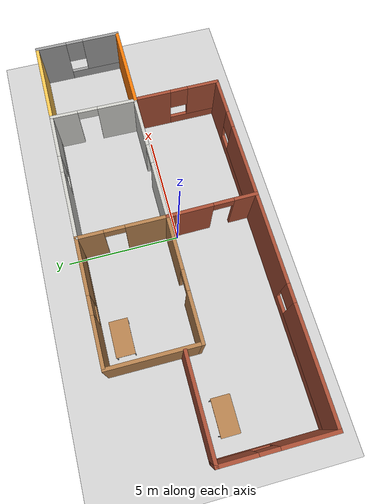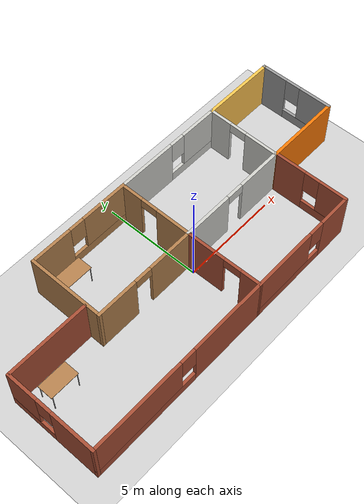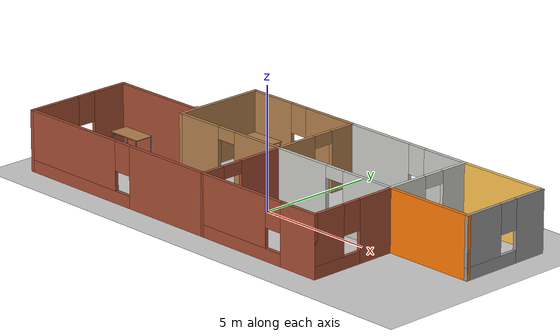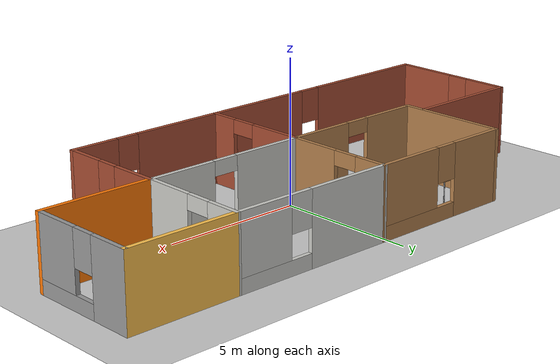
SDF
<sdf version="1.6">
 <world name="default">
  <model name="ground_plane">
   <static>1</static>
   <link name="link">
    <collision name="collision">
     <geometry><plane><normal>0 0 1</normal><size>100 100</size></plane></geometry>
     <surface>
      <contact><collide_bitmask>65535</collide_bitmask></contact>
      <friction><ode><mu>100</mu><mu2>50</mu2></ode></friction>
     </surface>
    </collision>
    <visual name="visual">
     <cast_shadows>0</cast_shadows>
     <geometry><plane><normal>0 0 1</normal><size>100 100</size></plane></geometry>
     <material>
      <script><uri>file://media/materials/scripts/gazebo.material</uri><name>Gazebo/Grey</name></script>
     </material>
    </visual>
   </link>
  </model>
  <model name="Untitled">
   <pose>0.26939 0.41592 0 0 -0 0</pose>
   <link name="Wall_0">
    <collision name="Wall_0_Collision">
     <geometry><box><size>4 0.15 2.5</size></box></geometry>
     <pose>0 0 1.25 0 -0 0</pose>
    </collision>
    <visual name="Wall_0_Visual">
     <pose>0 0 1.25 0 -0 0</pose>
     <geometry><box><size>4 0.15 2.5</size></box></geometry>
     <material>
      <script><uri>file://media/materials/scripts/gazebo.material</uri><name>Gazebo/Wood</name></script>
      <ambient>1 1 1 1</ambient>
     </material>
     <meta><layer>0</layer></meta>
    </visual>
    <pose>-5.4532 1.93857 0 0 -0 1.5708</pose>
   </link>
   <link name="Wall_1">
    <pose>-2.7782 3.86357 0 0 -0 0</pose>
    <visual name="Wall_1_Visual_0">
     <pose>-1.66344 0 1.25 0 -0 0</pose>
     <geometry><box><size>2.17311 0.15 2.5</size></box></geometry>
     <material>
      <script><uri>file://media/materials/scripts/gazebo.material</uri><name>Gazebo/Wood</name></script>
      <ambient>1 1 1 1</ambient>
     </material>
     <meta><layer>0</layer></meta>
    </visual>
    <collision name="Wall_1_Collision_0">
     <geometry><box><size>2.17311 0.15 2.5</size></box></geometry>
     <pose>-1.66344 0 1.25 0 -0 0</pose>
    </collision>
    <visual name="Wall_1_Visual_1">
     <pose>1.08656 0 0.25 0 -0 0</pose>
     <geometry><box><size>3.32689 0.15 0.5</size></box></geometry>
     <material>
      <script><uri>file://media/materials/scripts/gazebo.material</uri><name>Gazebo/Wood</name></script>
      <ambient>1 1 1 1</ambient>
     </material>
     <meta><layer>0</layer></meta>
    </visual>
    <collision name="Wall_1_Collision_1">
     <geometry><box><size>3.32689 0.15 0.5</size></box></geometry>
     <pose>1.08656 0 0.25 0 -0 0</pose>
    </collision>
    <visual name="Wall_1_Visual_2">
     <pose>1.48656 0 1.5 0 -0 0</pose>
     <geometry><box><size>2.52689 0.15 2</size></box></geometry>
     <material>
      <script><uri>file://media/materials/scripts/gazebo.material</uri><name>Gazebo/Wood</name></script>
      <ambient>1 1 1 1</ambient>
     </material>
     <meta><layer>0</layer></meta>
    </visual>
    <collision name="Wall_1_Collision_2">
     <geometry><box><size>2.52689 0.15 2</size></box></geometry>
     <pose>1.48656 0 1.5 0 -0 0</pose>
    </collision>
    <visual name="Wall_1_Visual_3">
     <pose>-0.176886 0 1.9 0 -0 0</pose>
     <geometry><box><size>0.8 0.15 1.2</size></box></geometry>
     <material>
      <script><uri>file://media/materials/scripts/gazebo.material</uri><name>Gazebo/Wood</name></script>
      <ambient>1 1 1 1</ambient>
     </material>
     <meta><layer>0</layer></meta>
    </visual>
    <collision name="Wall_1_Collision_3">
     <geometry><box><size>0.8 0.15 1.2</size></box></geometry>
     <pose>-0.176886 0 1.9 0 -0 0</pose>
    </collision>
   </link>
   <link name="Wall_13">
    <pose>2.8218 0.013569 0 0 -0 0</pose>
    <visual name="Wall_13_Visual_0">
     <pose>-1.67586 0 1.25 0 -0 0</pose>
     <geometry><box><size>2.64829 0.15 2.5</size></box></geometry>
     <material>
      <script><uri>file://media/materials/scripts/gazebo.material</uri><name>Gazebo/CeilingTiled</name></script>
      <ambient>0.996078 0.47451 0.0196078 1</ambient>
     </material>
     <meta><layer>0</layer></meta>
    </visual>
    <collision name="Wall_13_Collision_0">
     <geometry><box><size>2.64829 0.15 2.5</size></box></geometry>
     <pose>-1.67586 0 1.25 0 -0 0</pose>
    </collision>
    <visual name="Wall_13_Visual_1">
     <pose>1.77414 0 1.25 0 -0 0</pose>
     <geometry><box><size>2.45171 0.15 2.5</size></box></geometry>
     <material>
      <script><uri>file://media/materials/scripts/gazebo.material</uri><name>Gazebo/CeilingTiled</name></script>
      <ambient>0.996078 0.47451 0.0196078 1</ambient>
     </material>
     <meta><layer>0</layer></meta>
    </visual>
    <collision name="Wall_13_Collision_1">
     <geometry><box><size>2.45171 0.15 2.5</size></box></geometry>
     <pose>1.77414 0 1.25 0 -0 0</pose>
    </collision>
    <visual name="Wall_13_Visual_2">
     <pose>0.098288 0 2.25 0 -0 0</pose>
     <geometry><box><size>0.9 0.15 0.5</size></box></geometry>
     <material>
      <script><uri>file://media/materials/scripts/gazebo.material</uri><name>Gazebo/CeilingTiled</name></script>
      <ambient>0.996078 0.47451 0.0196078 1</ambient>
     </material>
     <meta><layer>0</layer></meta>
    </visual>
    <collision name="Wall_13_Collision_2">
     <geometry><box><size>0.9 0.15 0.5</size></box></geometry>
     <pose>0.098288 0 2.25 0 -0 0</pose>
    </collision>
   </link>
   <link name="Wall_14">
    <pose>5.7734 1.92534 0 0 -0 1.55688</pose>
    <visual name="Wall_14_Visual_0">
     <pose>-1.0801 0 1.25 0 -0 0</pose>
     <geometry><box><size>1.81371 0.15 2.5</size></box></geometry>
     <material>
      <script><uri>file://media/materials/scripts/gazebo.material</uri><name>Gazebo/CeilingTiled</name></script>
      <ambient>1 1 1 1</ambient>
     </material>
     <meta><layer>0</layer></meta>
    </visual>
    <collision name="Wall_14_Collision_0">
     <geometry><box><size>1.81371 0.15 2.5</size></box></geometry>
     <pose>-1.0801 0 1.25 0 -0 0</pose>
    </collision>
    <visual name="Wall_14_Visual_1">
     <pose>1.35686 0 1.25 0 -0 0</pose>
     <geometry><box><size>1.26021 0.15 2.5</size></box></geometry>
     <material>
      <script><uri>file://media/materials/scripts/gazebo.material</uri><name>Gazebo/CeilingTiled</name></script>
      <ambient>1 1 1 1</ambient>
     </material>
     <meta><layer>0</layer></meta>
    </visual>
    <collision name="Wall_14_Collision_1">
     <geometry><box><size>1.26021 0.15 2.5</size></box></geometry>
     <pose>1.35686 0 1.25 0 -0 0</pose>
    </collision>
    <visual name="Wall_14_Visual_2">
     <pose>0.276753 0 2.25 0 -0 0</pose>
     <geometry><box><size>0.9 0.15 0.5</size></box></geometry>
     <material>
      <script><uri>file://media/materials/scripts/gazebo.material</uri><name>Gazebo/CeilingTiled</name></script>
      <ambient>1 1 1 1</ambient>
     </material>
     <meta><layer>0</layer></meta>
    </visual>
    <collision name="Wall_14_Collision_2">
     <geometry><box><size>0.9 0.15 0.5</size></box></geometry>
     <pose>0.276753 0 2.25 0 -0 0</pose>
    </collision>
   </link>
   <link name="Wall_15">
    <collision name="Wall_15_Collision">
     <geometry><box><size>4 0.15 2.5</size></box></geometry>
     <pose>0 0 1.25 0 -0 0</pose>
    </collision>
    <visual name="Wall_15_Visual">
     <pose>0 0 1.25 0 -0 0</pose>
     <geometry><box><size>4 0.15 2.5</size></box></geometry>
     <material>
      <script><uri>file://media/materials/scripts/gazebo.material</uri><name>Gazebo/Grey</name></script>
      <ambient>1 0.764706 0.305882 1</ambient>
     </material>
     <meta><layer>0</layer></meta>
    </visual>
    <pose>7.725 3.83712 0 0 -0 0</pose>
   </link>
   <link name="Wall_16">
    <pose>9.65 1.91212 0 0 0 -1.5708</pose>
    <visual name="Wall_16_Visual_0">
     <pose>-1.27486 0 1.25 0 -0 0</pose>
     <geometry><box><size>1.45027 0.15 2.5</size></box></geometry>
     <material>
      <script><uri>file://media/materials/scripts/gazebo.material</uri><name>Gazebo/Grey</name></script>
      <ambient>1 1 1 1</ambient>
     </material>
     <meta><layer>0</layer></meta>
    </visual>
    <collision name="Wall_16_Collision_0">
     <geometry><box><size>1.45027 0.15 2.5</size></box></geometry>
     <pose>-1.27486 0 1.25 0 -0 0</pose>
    </collision>
    <visual name="Wall_16_Visual_1">
     <pose>0.725137 0 0.25 0 -0 0</pose>
     <geometry><box><size>2.54973 0.15 0.5</size></box></geometry>
     <material>
      <script><uri>file://media/materials/scripts/gazebo.material</uri><name>Gazebo/Grey</name></script>
      <ambient>1 1 1 1</ambient>
     </material>
     <meta><layer>0</layer></meta>
    </visual>
    <collision name="Wall_16_Collision_1">
     <geometry><box><size>2.54973 0.15 0.5</size></box></geometry>
     <pose>0.725137 0 0.25 0 -0 0</pose>
    </collision>
    <visual name="Wall_16_Visual_2">
     <pose>1.12514 0 1.5 0 -0 0</pose>
     <geometry><box><size>1.74973 0.15 2</size></box></geometry>
     <material>
      <script><uri>file://media/materials/scripts/gazebo.material</uri><name>Gazebo/Grey</name></script>
      <ambient>1 1 1 1</ambient>
     </material>
     <meta><layer>0</layer></meta>
    </visual>
    <collision name="Wall_16_Collision_2">
     <geometry><box><size>1.74973 0.15 2</size></box></geometry>
     <pose>1.12514 0 1.5 0 -0 0</pose>
    </collision>
    <visual name="Wall_16_Visual_3">
     <pose>-0.149727 0 1.9 0 -0 0</pose>
     <geometry><box><size>0.8 0.15 1.2</size></box></geometry>
     <material>
      <script><uri>file://media/materials/scripts/gazebo.material</uri><name>Gazebo/Grey</name></script>
      <ambient>1 1 1 1</ambient>
     </material>
     <meta><layer>0</layer></meta>
    </visual>
    <collision name="Wall_16_Collision_3">
     <geometry><box><size>0.8 0.15 1.2</size></box></geometry>
     <pose>-0.149727 0 1.9 0 -0 0</pose>
    </collision>
   </link>
   <link name="Wall_17">
    <collision name="Wall_17_Collision">
     <geometry><box><size>4 0.15 2.5</size></box></geometry>
     <pose>0 0 1.25 0 -0 0</pose>
    </collision>
    <visual name="Wall_17_Visual">
     <pose>0 0 1.25 0 -0 0</pose>
     <geometry><box><size>4 0.15 2.5</size></box></geometry>
     <material>
      <script><uri>file://media/materials/scripts/gazebo.material</uri><name>Gazebo/Grey</name></script>
      <ambient>0.996078 0.47451 0.0196078 1</ambient>
     </material>
     <meta><layer>0</layer></meta>
    </visual>
    <pose>7.725 -0.012882 0 0 -0 3.14159</pose>
   </link>
   <link name="Wall_18">
    <pose>5.8 -1.93788 0 0 0 -1.5708</pose>
    <visual name="Wall_18_Visual_0">
     <pose>-1.14124 0 1.25 0 -0 0</pose>
     <geometry><box><size>1.71752 0.15 2.5</size></box></geometry>
     <material>
      <script><uri>file://media/materials/scripts/gazebo.material</uri><name>Gazebo/Bricks</name></script>
      <ambient>1 1 1 1</ambient>
     </material>
     <meta><layer>0</layer></meta>
    </visual>
    <collision name="Wall_18_Collision_0">
     <geometry><box><size>1.71752 0.15 2.5</size></box></geometry>
     <pose>-1.14124 0 1.25 0 -0 0</pose>
    </collision>
    <visual name="Wall_18_Visual_1">
     <pose>0.858761 0 0.25 0 -0 0</pose>
     <geometry><box><size>2.28248 0.15 0.5</size></box></geometry>
     <material>
      <script><uri>file://media/materials/scripts/gazebo.material</uri><name>Gazebo/Bricks</name></script>
      <ambient>1 1 1 1</ambient>
     </material>
     <meta><layer>0</layer></meta>
    </visual>
    <collision name="Wall_18_Collision_1">
     <geometry><box><size>2.28248 0.15 0.5</size></box></geometry>
     <pose>0.858761 0 0.25 0 -0 0</pose>
    </collision>
    <visual name="Wall_18_Visual_2">
     <pose>1.25876 0 1.5 0 -0 0</pose>
     <geometry><box><size>1.48248 0.15 2</size></box></geometry>
     <material>
      <script><uri>file://media/materials/scripts/gazebo.material</uri><name>Gazebo/Bricks</name></script>
      <ambient>1 1 1 1</ambient>
     </material>
     <meta><layer>0</layer></meta>
    </visual>
    <collision name="Wall_18_Collision_2">
     <geometry><box><size>1.48248 0.15 2</size></box></geometry>
     <pose>1.25876 0 1.5 0 -0 0</pose>
    </collision>
    <visual name="Wall_18_Visual_3">
     <pose>0.117521 0 1.9 0 -0 0</pose>
     <geometry><box><size>0.8 0.15 1.2</size></box></geometry>
     <material>
      <script><uri>file://media/materials/scripts/gazebo.material</uri><name>Gazebo/Bricks</name></script>
      <ambient>1 1 1 1</ambient>
     </material>
     <meta><layer>0</layer></meta>
    </visual>
    <collision name="Wall_18_Collision_3">
     <geometry><box><size>0.8 0.15 1.2</size></box></geometry>
     <pose>0.117521 0 1.9 0 -0 0</pose>
    </collision>
   </link>
   <link name="Wall_19">
    <pose>2.875 -3.86288 0 0 -0 3.14159</pose>
    <visual name="Wall_19_Visual_0">
     <pose>-2.11576 0 1.25 0 -0 0</pose>
     <geometry><box><size>1.76847 0.15 2.5</size></box></geometry>
     <material>
      <script><uri>file://media/materials/scripts/gazebo.material</uri><name>Gazebo/Bricks</name></script>
      <ambient>1 1 1 1</ambient>
     </material>
     <meta><layer>0</layer></meta>
    </visual>
    <collision name="Wall_19_Collision_0">
     <geometry><box><size>1.76847 0.15 2.5</size></box></geometry>
     <pose>-2.11576 0 1.25 0 -0 0</pose>
    </collision>
    <visual name="Wall_19_Visual_1">
     <pose>0.884236 0 0.25 0 -0 0</pose>
     <geometry><box><size>4.23153 0.15 0.5</size></box></geometry>
     <material>
      <script><uri>file://media/materials/scripts/gazebo.material</uri><name>Gazebo/Bricks</name></script>
      <ambient>1 1 1 1</ambient>
     </material>
     <meta><layer>0</layer></meta>
    </visual>
    <collision name="Wall_19_Collision_1">
     <geometry><box><size>4.23153 0.15 0.5</size></box></geometry>
     <pose>0.884236 0 0.25 0 -0 0</pose>
    </collision>
    <visual name="Wall_19_Visual_2">
     <pose>1.28424 0 1.5 0 -0 0</pose>
     <geometry><box><size>3.43153 0.15 2</size></box></geometry>
     <material>
      <script><uri>file://media/materials/scripts/gazebo.material</uri><name>Gazebo/Bricks</name></script>
      <ambient>1 1 1 1</ambient>
     </material>
     <meta><layer>0</layer></meta>
    </visual>
    <collision name="Wall_19_Collision_2">
     <geometry><box><size>3.43153 0.15 2</size></box></geometry>
     <pose>1.28424 0 1.5 0 -0 0</pose>
    </collision>
    <visual name="Wall_19_Visual_3">
     <pose>-0.831528 0 1.9 0 -0 0</pose>
     <geometry><box><size>0.8 0.15 1.2</size></box></geometry>
     <material>
      <script><uri>file://media/materials/scripts/gazebo.material</uri><name>Gazebo/Bricks</name></script>
      <ambient>1 1 1 1</ambient>
     </material>
     <meta><layer>0</layer></meta>
    </visual>
    <collision name="Wall_19_Collision_3">
     <geometry><box><size>0.8 0.15 1.2</size></box></geometry>
     <pose>-0.831528 0 1.9 0 -0 0</pose>
    </collision>
   </link>
   <link name="Wall_2">
    <pose>-0.1032 1.93857 0 0 0 -1.5708</pose>
    <visual name="Wall_2_Visual_0">
     <pose>-1.39073 0 1.25 0 -0 0</pose>
     <geometry><box><size>1.21855 0.15 2.5</size></box></geometry>
     <material>
      <script><uri>file://media/materials/scripts/gazebo.material</uri><name>Gazebo/Wood</name></script>
      <ambient>1 1 1 1</ambient>
     </material>
     <meta><layer>0</layer></meta>
    </visual>
    <collision name="Wall_2_Collision_0">
     <geometry><box><size>1.21855 0.15 2.5</size></box></geometry>
     <pose>-1.39073 0 1.25 0 -0 0</pose>
    </collision>
    <visual name="Wall_2_Visual_1">
     <pose>1.05927 0 1.25 0 -0 0</pose>
     <geometry><box><size>1.88145 0.15 2.5</size></box></geometry>
     <material>
      <script><uri>file://media/materials/scripts/gazebo.material</uri><name>Gazebo/Wood</name></script>
      <ambient>1 1 1 1</ambient>
     </material>
     <meta><layer>0</layer></meta>
    </visual>
    <collision name="Wall_2_Collision_1">
     <geometry><box><size>1.88145 0.15 2.5</size></box></geometry>
     <pose>1.05927 0 1.25 0 -0 0</pose>
    </collision>
    <visual name="Wall_2_Visual_2">
     <pose>-0.331452 0 2.25 0 -0 0</pose>
     <geometry><box><size>0.9 0.15 0.5</size></box></geometry>
     <material>
      <script><uri>file://media/materials/scripts/gazebo.material</uri><name>Gazebo/Wood</name></script>
      <ambient>1 1 1 1</ambient>
     </material>
     <meta><layer>0</layer></meta>
    </visual>
    <collision name="Wall_2_Collision_2">
     <geometry><box><size>0.9 0.15 0.5</size></box></geometry>
     <pose>-0.331452 0 2.25 0 -0 0</pose>
    </collision>
   </link>
   <link name="Wall_20">
    <pose>-0.0766 -1.92466 0 0 -0 1.58452</pose>
    <visual name="Wall_20_Visual_0">
     <pose>-1.48298 0 1.25 0 -0 0</pose>
     <geometry><box><size>1.06086 0.15 2.5</size></box></geometry>
     <material>
      <script><uri>file://media/materials/scripts/gazebo.material</uri><name>Gazebo/Bricks</name></script>
      <ambient>1 1 1 1</ambient>
     </material>
     <meta><layer>0</layer></meta>
    </visual>
    <collision name="Wall_20_Collision_0">
     <geometry><box><size>1.06086 0.15 2.5</size></box></geometry>
     <pose>-1.48298 0 1.25 0 -0 0</pose>
    </collision>
    <visual name="Wall_20_Visual_1">
     <pose>0.980428 0 1.25 0 -0 0</pose>
     <geometry><box><size>2.06596 0.15 2.5</size></box></geometry>
     <material>
      <script><uri>file://media/materials/scripts/gazebo.material</uri><name>Gazebo/Bricks</name></script>
      <ambient>1 1 1 1</ambient>
     </material>
     <meta><layer>0</layer></meta>
    </visual>
    <collision name="Wall_20_Collision_1">
     <geometry><box><size>2.06596 0.15 2.5</size></box></geometry>
     <pose>0.980428 0 1.25 0 -0 0</pose>
    </collision>
    <visual name="Wall_20_Visual_2">
     <pose>-0.502552 0 2.25 0 -0 0</pose>
     <geometry><box><size>0.9 0.15 0.5</size></box></geometry>
     <material>
      <script><uri>file://media/materials/scripts/gazebo.material</uri><name>Gazebo/Bricks</name></script>
      <ambient>1 1 1 1</ambient>
     </material>
     <meta><layer>0</layer></meta>
    </visual>
    <collision name="Wall_20_Collision_2">
     <geometry><box><size>0.9 0.15 0.5</size></box></geometry>
     <pose>-0.502552 0 2.25 0 -0 0</pose>
    </collision>
   </link>
   <link name="Wall_22">
    <pose>-4.85 -3.86288 0 0 -0 3.14159</pose>
    <visual name="Wall_22_Visual_0">
     <pose>-2.83321 0 1.25 0 -0 0</pose>
     <geometry><box><size>4.08358 0.15 2.5</size></box></geometry>
     <material>
      <script><uri>file://media/materials/scripts/gazebo.material</uri><name>Gazebo/Bricks</name></script>
      <ambient>0.996078 0.47451 0.0196078 1</ambient>
     </material>
     <meta><layer>0</layer></meta>
    </visual>
    <collision name="Wall_22_Collision_0">
     <geometry><box><size>4.08358 0.15 2.5</size></box></geometry>
     <pose>-2.83321 0 1.25 0 -0 0</pose>
    </collision>
    <visual name="Wall_22_Visual_1">
     <pose>2.04179 0 0.25 0 -0 0</pose>
     <geometry><box><size>5.66642 0.15 0.5</size></box></geometry>
     <material>
      <script><uri>file://media/materials/scripts/gazebo.material</uri><name>Gazebo/Bricks</name></script>
      <ambient>0.996078 0.47451 0.0196078 1</ambient>
     </material>
     <meta><layer>0</layer></meta>
    </visual>
    <collision name="Wall_22_Collision_1">
     <geometry><box><size>5.66642 0.15 0.5</size></box></geometry>
     <pose>2.04179 0 0.25 0 -0 0</pose>
    </collision>
    <visual name="Wall_22_Visual_2">
     <pose>2.44179 0 1.5 0 -0 0</pose>
     <geometry><box><size>4.86642 0.15 2</size></box></geometry>
     <material>
      <script><uri>file://media/materials/scripts/gazebo.material</uri><name>Gazebo/Bricks</name></script>
      <ambient>0.996078 0.47451 0.0196078 1</ambient>
     </material>
     <meta><layer>0</layer></meta>
    </visual>
    <collision name="Wall_22_Collision_2">
     <geometry><box><size>4.86642 0.15 2</size></box></geometry>
     <pose>2.44179 0 1.5 0 -0 0</pose>
    </collision>
    <visual name="Wall_22_Visual_3">
     <pose>-0.391424 0 1.9 0 -0 0</pose>
     <geometry><box><size>0.8 0.15 1.2</size></box></geometry>
     <material>
      <script><uri>file://media/materials/scripts/gazebo.material</uri><name>Gazebo/Bricks</name></script>
      <ambient>0.996078 0.47451 0.0196078 1</ambient>
     </material>
     <meta><layer>0</layer></meta>
    </visual>
    <collision name="Wall_22_Collision_3">
     <geometry><box><size>0.8 0.15 1.2</size></box></geometry>
     <pose>-0.391424 0 1.9 0 -0 0</pose>
    </collision>
   </link>
   <link name="Wall_23">
    <pose>-9.65 -1.56288 0 0 -0 1.5708</pose>
    <visual name="Wall_23_Visual_0">
     <pose>-1.21741 0 1.25 0 -0 0</pose>
     <geometry><box><size>2.31518 0.15 2.5</size></box></geometry>
     <material>
      <script><uri>file://media/materials/scripts/gazebo.material</uri><name>Gazebo/Bricks</name></script>
      <ambient>1 1 1 1</ambient>
     </material>
     <meta><layer>0</layer></meta>
    </visual>
    <collision name="Wall_23_Collision_0">
     <geometry><box><size>2.31518 0.15 2.5</size></box></geometry>
     <pose>-1.21741 0 1.25 0 -0 0</pose>
    </collision>
    <visual name="Wall_23_Visual_1">
     <pose>1.15759 0 0.25 0 -0 0</pose>
     <geometry><box><size>2.43482 0.15 0.5</size></box></geometry>
     <material>
      <script><uri>file://media/materials/scripts/gazebo.material</uri><name>Gazebo/Bricks</name></script>
      <ambient>1 1 1 1</ambient>
     </material>
     <meta><layer>0</layer></meta>
    </visual>
    <collision name="Wall_23_Collision_1">
     <geometry><box><size>2.43482 0.15 0.5</size></box></geometry>
     <pose>1.15759 0 0.25 0 -0 0</pose>
    </collision>
    <visual name="Wall_23_Visual_2">
     <pose>1.55759 0 1.5 0 -0 0</pose>
     <geometry><box><size>1.63482 0.15 2</size></box></geometry>
     <material>
      <script><uri>file://media/materials/scripts/gazebo.material</uri><name>Gazebo/Bricks</name></script>
      <ambient>1 1 1 1</ambient>
     </material>
     <meta><layer>0</layer></meta>
    </visual>
    <collision name="Wall_23_Collision_2">
     <geometry><box><size>1.63482 0.15 2</size></box></geometry>
     <pose>1.55759 0 1.5 0 -0 0</pose>
    </collision>
    <visual name="Wall_23_Visual_3">
     <pose>0.340181 0 1.9 0 -0 0</pose>
     <geometry><box><size>0.8 0.15 1.2</size></box></geometry>
     <material>
      <script><uri>file://media/materials/scripts/gazebo.material</uri><name>Gazebo/Bricks</name></script>
      <ambient>1 1 1 1</ambient>
     </material>
     <meta><layer>0</layer></meta>
    </visual>
    <collision name="Wall_23_Collision_3">
     <geometry><box><size>0.8 0.15 1.2</size></box></geometry>
     <pose>0.340181 0 1.9 0 -0 0</pose>
    </collision>
   </link>
   <link name="Wall_24">
    <collision name="Wall_24_Collision">
     <geometry><box><size>4.25 0.15 2.5</size></box></geometry>
     <pose>0 0 1.25 0 -0 0</pose>
    </collision>
    <visual name="Wall_24_Visual">
     <pose>0 0 1.25 0 -0 0</pose>
     <geometry><box><size>4.25 0.15 2.5</size></box></geometry>
     <material>
      <script><uri>file://media/materials/scripts/gazebo.material</uri><name>Gazebo/Bricks</name></script>
      <ambient>0.996078 0.47451 0.0196078 1</ambient>
     </material>
     <meta><layer>0</layer></meta>
    </visual>
    <pose>-7.6 0.737118 0 0 -0 0</pose>
   </link>
   <link name="Wall_3">
    <pose>-2.7782 0.013569 0 0 -0 3.14159</pose>
    <visual name="Wall_3_Visual_0">
     <pose>-1.53469 0 1.25 0 -0 0</pose>
     <geometry><box><size>2.43063 0.15 2.5</size></box></geometry>
     <material>
      <script><uri>file://media/materials/scripts/gazebo.material</uri><name>Gazebo/Wood</name></script>
      <ambient>1 1 1 1</ambient>
     </material>
     <meta><layer>0</layer></meta>
    </visual>
    <collision name="Wall_3_Collision_0">
     <geometry><box><size>2.43063 0.15 2.5</size></box></geometry>
     <pose>-1.53469 0 1.25 0 -0 0</pose>
    </collision>
    <visual name="Wall_3_Visual_1">
     <pose>1.66531 0 1.25 0 -0 0</pose>
     <geometry><box><size>2.16938 0.15 2.5</size></box></geometry>
     <material>
      <script><uri>file://media/materials/scripts/gazebo.material</uri><name>Gazebo/Wood</name></script>
      <ambient>1 1 1 1</ambient>
     </material>
     <meta><layer>0</layer></meta>
    </visual>
    <collision name="Wall_3_Collision_1">
     <geometry><box><size>2.16938 0.15 2.5</size></box></geometry>
     <pose>1.66531 0 1.25 0 -0 0</pose>
    </collision>
    <visual name="Wall_3_Visual_2">
     <pose>0.130625 0 2.25 0 -0 0</pose>
     <geometry><box><size>0.9 0.15 0.5</size></box></geometry>
     <material>
      <script><uri>file://media/materials/scripts/gazebo.material</uri><name>Gazebo/Wood</name></script>
      <ambient>1 1 1 1</ambient>
     </material>
     <meta><layer>0</layer></meta>
    </visual>
    <collision name="Wall_3_Collision_2">
     <geometry><box><size>0.9 0.15 0.5</size></box></geometry>
     <pose>0.130625 0 2.25 0 -0 0</pose>
    </collision>
   </link>
   <link name="Wall_9">
    <pose>2.8484 3.85034 0 0 0 -0.004481</pose>
    <visual name="Wall_9_Visual_0">
     <pose>-1.44634 0 1.25 0 -0 0</pose>
     <geometry><box><size>3.16051 0.15 2.5</size></box></geometry>
     <material>
      <script><uri>file://media/materials/scripts/gazebo.material</uri><name>Gazebo/CeilingTiled</name></script>
      <ambient>0.996078 0.47451 0.0196078 1</ambient>
     </material>
     <meta><layer>0</layer></meta>
    </visual>
    <collision name="Wall_9_Collision_0">
     <geometry><box><size>3.16051 0.15 2.5</size></box></geometry>
     <pose>-1.44634 0 1.25 0 -0 0</pose>
    </collision>
    <visual name="Wall_9_Visual_1">
     <pose>1.58026 0 0.25 0 -0 0</pose>
     <geometry><box><size>2.89269 0.15 0.5</size></box></geometry>
     <material>
      <script><uri>file://media/materials/scripts/gazebo.material</uri><name>Gazebo/CeilingTiled</name></script>
      <ambient>0.996078 0.47451 0.0196078 1</ambient>
     </material>
     <meta><layer>0</layer></meta>
    </visual>
    <collision name="Wall_9_Collision_1">
     <geometry><box><size>2.89269 0.15 0.5</size></box></geometry>
     <pose>1.58026 0 0.25 0 -0 0</pose>
    </collision>
    <visual name="Wall_9_Visual_2">
     <pose>1.98026 0 1.5 0 -0 0</pose>
     <geometry><box><size>2.09269 0.15 2</size></box></geometry>
     <material>
      <script><uri>file://media/materials/scripts/gazebo.material</uri><name>Gazebo/CeilingTiled</name></script>
      <ambient>0.996078 0.47451 0.0196078 1</ambient>
     </material>
     <meta><layer>0</layer></meta>
    </visual>
    <collision name="Wall_9_Collision_2">
     <geometry><box><size>2.09269 0.15 2</size></box></geometry>
     <pose>1.98026 0 1.5 0 -0 0</pose>
    </collision>
    <visual name="Wall_9_Visual_3">
     <pose>0.533913 0 1.9 0 -0 0</pose>
     <geometry><box><size>0.8 0.15 1.2</size></box></geometry>
     <material>
      <script><uri>file://media/materials/scripts/gazebo.material</uri><name>Gazebo/CeilingTiled</name></script>
      <ambient>0.996078 0.47451 0.0196078 1</ambient>
     </material>
     <meta><layer>0</layer></meta>
    </visual>
    <collision name="Wall_9_Collision_3">
     <geometry><box><size>0.8 0.15 1.2</size></box></geometry>
     <pose>0.533913 0 1.9 0 -0 0</pose>
    </collision>
   </link>
   <static>1</static>
  </model>
  <model name="table">
   <static>1</static>
   <link name="link">
    <collision name="surface">
     <pose>0 0 1 0 -0 0</pose>
     <geometry><box><size>1.5 0.8 0.03</size></box></geometry>
     <surface><friction><ode><mu>0.6</mu><mu2>0.6</mu2></ode></friction></surface>
    </collision>
    <visual name="visual1">
     <pose>0 0 1 0 -0 0</pose>
     <geometry><box><size>1.5 0.8 0.03</size></box></geometry>
     <material>
      <script><uri>file://media/materials/scripts/gazebo.material</uri><name>Gazebo/Wood</name></script>
     </material>
    </visual>
    <collision name="front_left_leg">
     <pose>0.68 0.38 0.5 0 -0 0</pose>
     <geometry><cylinder><radius>0.02</radius><length>1</length></cylinder></geometry>
    </collision>
    <visual name="front_left_leg">
     <pose>0.68 0.38 0.5 0 -0 0</pose>
     <geometry><cylinder><radius>0.02</radius><length>1</length></cylinder></geometry>
     <material>
      <script><uri>file://media/materials/scripts/gazebo.material</uri><name>Gazebo/Grey</name></script>
     </material>
    </visual>
    <collision name="front_right_leg">
     <pose>0.68 -0.38 0.5 0 -0 0</pose>
     <geometry><cylinder><radius>0.02</radius><length>1</length></cylinder></geometry>
    </collision>
    <visual name="front_right_leg">
     <pose>0.68 -0.38 0.5 0 -0 0</pose>
     <geometry><cylinder><radius>0.02</radius><length>1</length></cylinder></geometry>
     <material>
      <script><uri>file://media/materials/scripts/gazebo.material</uri><name>Gazebo/Grey</name></script>
     </material>
    </visual>
    <collision name="back_right_leg">
     <pose>-0.68 -0.38 0.5 0 -0 0</pose>
     <geometry><cylinder><radius>0.02</radius><length>1</length></cylinder></geometry>
    </collision>
    <visual name="back_right_leg">
     <pose>-0.68 -0.38 0.5 0 -0 0</pose>
     <geometry><cylinder><radius>0.02</radius><length>1</length></cylinder></geometry>
     <material>
      <script><uri>file://media/materials/scripts/gazebo.material</uri><name>Gazebo/Grey</name></script>
     </material>
    </visual>
    <collision name="back_left_leg">
     <pose>-0.68 0.38 0.5 0 -0 0</pose>
     <geometry><cylinder><radius>0.02</radius><length>1</length></cylinder></geometry>
    </collision>
    <visual name="back_left_leg">
     <pose>-0.68 0.38 0.5 0 -0 0</pose>
     <geometry><cylinder><radius>0.02</radius><length>1</length></cylinder></geometry>
     <material>
      <script><uri>file://media/materials/scripts/gazebo.material</uri><name>Gazebo/Grey</name></script>
     </material>
    </visual>
   </link>
   <pose>-3.9528 3.41442 0 0 -0 0</pose>
  </model>
  <model name="table_clone_1">
   <static>1</static>
   <link name="link">
    <collision name="surface">
     <pose>0 0 1 0 -0 0</pose>
     <geometry><box><size>1.5 0.8 0.03</size></box></geometry>
     <surface><friction><ode><mu>0.6</mu><mu2>0.6</mu2></ode></friction></surface>
    </collision>
    <visual name="visual1">
     <pose>0 0 1 0 -0 0</pose>
     <geometry><box><size>1.5 0.8 0.03</size></box></geometry>
     <material>
      <script><uri>file://media/materials/scripts/gazebo.material</uri><name>Gazebo/Wood</name></script>
     </material>
    </visual>
    <collision name="front_left_leg">
     <pose>0.68 0.38 0.5 0 -0 0</pose>
     <geometry><cylinder><radius>0.02</radius><length>1</length></cylinder></geometry>
    </collision>
    <visual name="front_left_leg">
     <pose>0.68 0.38 0.5 0 -0 0</pose>
     <geometry><cylinder><radius>0.02</radius><length>1</length></cylinder></geometry>
     <material>
      <script><uri>file://media/materials/scripts/gazebo.material</uri><name>Gazebo/Grey</name></script>
     </material>
    </visual>
    <collision name="front_right_leg">
     <pose>0.68 -0.38 0.5 0 -0 0</pose>
     <geometry><cylinder><radius>0.02</radius><length>1</length></cylinder></geometry>
    </collision>
    <visual name="front_right_leg">
     <pose>0.68 -0.38 0.5 0 -0 0</pose>
     <geometry><cylinder><radius>0.02</radius><length>1</length></cylinder></geometry>
     <material>
      <script><uri>file://media/materials/scripts/gazebo.material</uri><name>Gazebo/Grey</name></script>
     </material>
    </visual>
    <collision name="back_right_leg">
     <pose>-0.68 -0.38 0.5 0 -0 0</pose>
     <geometry><cylinder><radius>0.02</radius><length>1</length></cylinder></geometry>
    </collision>
    <visual name="back_right_leg">
     <pose>-0.68 -0.38 0.5 0 -0 0</pose>
     <geometry><cylinder><radius>0.02</radius><length>1</length></cylinder></geometry>
     <material>
      <script><uri>file://media/materials/scripts/gazebo.material</uri><name>Gazebo/Grey</name></script>
     </material>
    </visual>
    <collision name="back_left_leg">
     <pose>-0.68 0.38 0.5 0 -0 0</pose>
     <geometry><cylinder><radius>0.02</radius><length>1</length></cylinder></geometry>
    </collision>
    <visual name="back_left_leg">
     <pose>-0.68 0.38 0.5 0 -0 0</pose>
     <geometry><cylinder><radius>0.02</radius><length>1</length></cylinder></geometry>
     <material>
      <script><uri>file://media/materials/scripts/gazebo.material</uri><name>Gazebo/Grey</name></script>
     </material>
    </visual>
   </link>
   <pose>-7.86578 0.208682 0 0 -0 0</pose>
  </model>
 </world>
</sdf>
